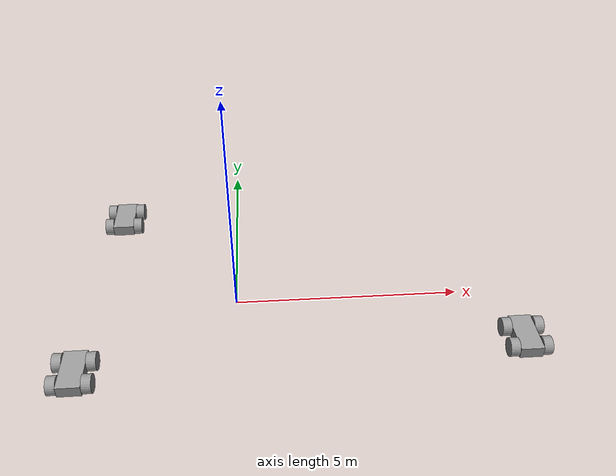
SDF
<?xml version='1.0'?>
<sdf version='1.6'>
  <model name='wheelRobots'>
    <link name='link_0_clone'>
      <pose frame=''>6.18629 -1.44509 -0.029821 0 -0 0</pose>
      <inertial>
        <mass>1</mass>
        <inertia>
          <ixx>0.166667</ixx>
          <ixy>0</ixy>
          <ixz>0</ixz>
          <iyy>0.166667</iyy>
          <iyz>0</iyz>
          <izz>0.166667</izz>
        </inertia>
        <pose frame=''>0 0 1 0 -0 0</pose>
      </inertial>
      <self_collide>0</self_collide>
      <kinematic>0</kinematic>
      <gravity>1</gravity>
      <visual name='visual'>
        <pose frame=''>0 0 0 0 -0 0</pose>
        <geometry>
          <box>
            <size>0.5 1 0.25</size>
          </box>
        </geometry>
        <material>
          <lighting>1</lighting>
          <script>
            <uri>file://media/materials/scripts/gazebo.material</uri>
            <name>Gazebo/Grey</name>
          </script>
          <ambient>0.3 0.3 0.3 1</ambient>
          <diffuse>0.7 0.7 0.7 1</diffuse>
          <specular>0.01 0.01 0.01 1</specular>
          <emissive>0 0 0 1</emissive>
          <shader type='vertex'>
            <normal_map>__default__</normal_map>
          </shader>
        </material>
        <transparency>0</transparency>
        <cast_shadows>1</cast_shadows>
      </visual>
      <collision name='collision'>
        <laser_retro>0</laser_retro>
        <max_contacts>10</max_contacts>
        <pose frame=''>0 0 0 0 -0 0</pose>
        <geometry>
          <box>
            <size>0.5 1 0.25</size>
          </box>
        </geometry>
        <surface>
          <friction>
            <ode>
              <mu>1</mu>
              <mu2>1</mu2>
              <fdir1>0 0 0</fdir1>
              <slip1>0</slip1>
              <slip2>0</slip2>
            </ode>
            <torsional>
              <coefficient>1</coefficient>
              <patch_radius>0</patch_radius>
              <surface_radius>0</surface_radius>
              <use_patch_radius>1</use_patch_radius>
              <ode>
                <slip>0</slip>
              </ode>
            </torsional>
          </friction>
          <bounce>
            <restitution_coefficient>0</restitution_coefficient>
            <threshold>1e+06</threshold>
          </bounce>
          <contact>
            <collide_without_contact>0</collide_without_contact>
            <collide_without_contact_bitmask>1</collide_without_contact_bitmask>
            <collide_bitmask>1</collide_bitmask>
            <ode>
              <soft_cfm>0</soft_cfm>
              <soft_erp>0.2</soft_erp>
              <kp>1e+13</kp>
              <kd>1</kd>
              <max_vel>0.01</max_vel>
              <min_depth>0</min_depth>
            </ode>
            <bullet>
              <split_impulse>1</split_impulse>
              <split_impulse_penetration_threshold>-0.01</split_impulse_penetration_threshold>
              <soft_cfm>0</soft_cfm>
              <soft_erp>0.2</soft_erp>
              <kp>1e+13</kp>
              <kd>1</kd>
            </bullet>
          </contact>
        </surface>
      </collision>
    </link>
    <link name='link_0_clone_clone'>
      <pose frame=''>-3.31114 -1.84359 -0.020863 0 -0 0</pose>
      <inertial>
        <mass>1</mass>
        <inertia>
          <ixx>0.166667</ixx>
          <ixy>0</ixy>
          <ixz>0</ixz>
          <iyy>0.166667</iyy>
          <iyz>0</iyz>
          <izz>0.166667</izz>
        </inertia>
        <pose frame=''>0 0 0 0 -0 0</pose>
      </inertial>
      <self_collide>0</self_collide>
      <kinematic>0</kinematic>
      <visual name='visual'>
        <pose frame=''>0 0 0 0 -0 0</pose>
        <geometry>
          <box>
            <size>0.5 1 0.25</size>
          </box>
        </geometry>
        <material>
          <lighting>1</lighting>
          <script>
            <uri>file://media/materials/scripts/gazebo.material</uri>
            <name>Gazebo/Grey</name>
          </script>
          <ambient>0.3 0.3 0.3 1</ambient>
          <diffuse>0.7 0.7 0.7 1</diffuse>
          <specular>0.01 0.01 0.01 1</specular>
          <emissive>0 0 0 1</emissive>
          <shader type='vertex'>
            <normal_map>__default__</normal_map>
          </shader>
        </material>
        <transparency>0</transparency>
        <cast_shadows>1</cast_shadows>
      </visual>
      <collision name='collision'>
        <laser_retro>0</laser_retro>
        <max_contacts>10</max_contacts>
        <pose frame=''>0 0 0 0 -0 0</pose>
        <geometry>
          <box>
            <size>0.5 1 0.25</size>
          </box>
        </geometry>
        <surface>
          <friction>
            <ode>
              <mu>1</mu>
              <mu2>1</mu2>
              <fdir1>0 0 0</fdir1>
              <slip1>0</slip1>
              <slip2>0</slip2>
            </ode>
            <torsional>
              <coefficient>1</coefficient>
              <patch_radius>0</patch_radius>
              <surface_radius>0</surface_radius>
              <use_patch_radius>1</use_patch_radius>
              <ode>
                <slip>0</slip>
              </ode>
            </torsional>
          </friction>
          <bounce>
            <restitution_coefficient>0</restitution_coefficient>
            <threshold>1e+06</threshold>
          </bounce>
          <contact>
            <collide_without_contact>0</collide_without_contact>
            <collide_without_contact_bitmask>1</collide_without_contact_bitmask>
            <collide_bitmask>1</collide_bitmask>
            <ode>
              <soft_cfm>0</soft_cfm>
              <soft_erp>0.2</soft_erp>
              <kp>1e+13</kp>
              <kd>1</kd>
              <max_vel>0.01</max_vel>
              <min_depth>0</min_depth>
            </ode>
            <bullet>
              <split_impulse>1</split_impulse>
              <split_impulse_penetration_threshold>-0.01</split_impulse_penetration_threshold>
              <soft_cfm>0</soft_cfm>
              <soft_erp>0.2</soft_erp>
              <kp>1e+13</kp>
              <kd>1</kd>
            </bullet>
          </contact>
        </surface>
      </collision>
    </link>
    <link name='link_0_clone_clone_0'>
      <pose frame=''>-2.87515 3.28869 0.050684 0 -0 0</pose>
      <inertial>
        <mass>1</mass>
        <inertia>
          <ixx>0.166667</ixx>
          <ixy>0</ixy>
          <ixz>0</ixz>
          <iyy>0.166667</iyy>
          <iyz>0</iyz>
          <izz>0.166667</izz>
        </inertia>
        <pose frame=''>0 0 0 0 -0 0</pose>
      </inertial>
      <self_collide>0</self_collide>
      <kinematic>0</kinematic>
      <visual name='visual'>
        <pose frame=''>0 0 0 0 -0 0</pose>
        <geometry>
          <box>
            <size>0.5 1 0.25</size>
          </box>
        </geometry>
        <material>
          <lighting>1</lighting>
          <script>
            <uri>file://media/materials/scripts/gazebo.material</uri>
            <name>Gazebo/Grey</name>
          </script>
          <ambient>0.3 0.3 0.3 1</ambient>
          <diffuse>0.7 0.7 0.7 1</diffuse>
          <specular>0.01 0.01 0.01 1</specular>
          <emissive>0 0 0 1</emissive>
          <shader type='vertex'>
            <normal_map>__default__</normal_map>
          </shader>
        </material>
        <transparency>0</transparency>
        <cast_shadows>1</cast_shadows>
      </visual>
      <collision name='collision'>
        <laser_retro>0</laser_retro>
        <max_contacts>10</max_contacts>
        <pose frame=''>0 0 0 0 -0 0</pose>
        <geometry>
          <box>
            <size>0.5 1 0.25</size>
          </box>
        </geometry>
        <surface>
          <friction>
            <ode>
              <mu>1</mu>
              <mu2>1</mu2>
              <fdir1>0 0 0</fdir1>
              <slip1>0</slip1>
              <slip2>0</slip2>
            </ode>
            <torsional>
              <coefficient>1</coefficient>
              <patch_radius>0</patch_radius>
              <surface_radius>0</surface_radius>
              <use_patch_radius>1</use_patch_radius>
              <ode>
                <slip>0</slip>
              </ode>
            </torsional>
          </friction>
          <bounce>
            <restitution_coefficient>0</restitution_coefficient>
            <threshold>1e+06</threshold>
          </bounce>
          <contact>
            <collide_without_contact>0</collide_without_contact>
            <collide_without_contact_bitmask>1</collide_without_contact_bitmask>
            <collide_bitmask>1</collide_bitmask>
            <ode>
              <soft_cfm>0</soft_cfm>
              <soft_erp>0.2</soft_erp>
              <kp>1e+13</kp>
              <kd>1</kd>
              <max_vel>0.01</max_vel>
              <min_depth>0</min_depth>
            </ode>
            <bullet>
              <split_impulse>1</split_impulse>
              <split_impulse_penetration_threshold>-0.01</split_impulse_penetration_threshold>
              <soft_cfm>0</soft_cfm>
              <soft_erp>0.2</soft_erp>
              <kp>1e+13</kp>
              <kd>1</kd>
            </bullet>
          </contact>
        </surface>
      </collision>
    </link>
    <link name='link_1_clone_clone_1'>
      <pose frame=''>6.53631 -1.14509 -0.029822 0 1.5707 0</pose>
      <inertial>
        <mass>1</mass>
        <inertia>
          <ixx>0.145833</ixx>
          <ixy>0</ixy>
          <ixz>0</ixz>
          <iyy>0.145833</iyy>
          <iyz>0</iyz>
          <izz>0.125</izz>
        </inertia>
        <pose frame=''>0 0 0 0 -0 0</pose>
      </inertial>
      <self_collide>0</self_collide>
      <kinematic>0</kinematic>
      <gravity>1</gravity>
      <visual name='visual'>
        <pose frame=''>0 0 0 0 -0 0</pose>
        <geometry>
          <cylinder>
            <radius>0.2</radius>
            <length>0.2</length>
          </cylinder>
        </geometry>
        <material>
          <lighting>1</lighting>
          <script>
            <uri>file://media/materials/scripts/gazebo.material</uri>
            <name>Gazebo/Grey</name>
          </script>
          <ambient>0.3 0.3 0.3 1</ambient>
          <diffuse>0.7 0.7 0.7 1</diffuse>
          <specular>0.01 0.01 0.01 1</specular>
          <emissive>0 0 0 1</emissive>
          <shader type='vertex'>
            <normal_map>__default__</normal_map>
          </shader>
        </material>
        <transparency>0</transparency>
        <cast_shadows>1</cast_shadows>
      </visual>
      <collision name='collision'>
        <laser_retro>0</laser_retro>
        <max_contacts>10</max_contacts>
        <pose frame=''>0 0 0 0 -0 0</pose>
        <geometry>
          <cylinder>
            <radius>0.2</radius>
            <length>0.2</length>
          </cylinder>
        </geometry>
        <surface>
          <friction>
            <ode>
              <mu>1</mu>
              <mu2>1</mu2>
              <fdir1>0 0 0</fdir1>
              <slip1>0</slip1>
              <slip2>0</slip2>
            </ode>
            <torsional>
              <coefficient>1</coefficient>
              <patch_radius>0</patch_radius>
              <surface_radius>0</surface_radius>
              <use_patch_radius>1</use_patch_radius>
              <ode>
                <slip>0</slip>
              </ode>
            </torsional>
          </friction>
          <bounce>
            <restitution_coefficient>0</restitution_coefficient>
            <threshold>1e+06</threshold>
          </bounce>
          <contact>
            <collide_without_contact>0</collide_without_contact>
            <collide_without_contact_bitmask>1</collide_without_contact_bitmask>
            <collide_bitmask>1</collide_bitmask>
            <ode>
              <soft_cfm>0</soft_cfm>
              <soft_erp>0.2</soft_erp>
              <kp>1e+13</kp>
              <kd>1</kd>
              <max_vel>0.01</max_vel>
              <min_depth>0</min_depth>
            </ode>
            <bullet>
              <split_impulse>1</split_impulse>
              <split_impulse_penetration_threshold>-0.01</split_impulse_penetration_threshold>
              <soft_cfm>0</soft_cfm>
              <soft_erp>0.2</soft_erp>
              <kp>1e+13</kp>
              <kd>1</kd>
            </bullet>
          </contact>
        </surface>
      </collision>
    </link>
    <link name='link_1_clone_clone_2'>
      <pose frame=''>5.83627 -1.74509 -0.029821 0 1.5707 0</pose>
      <inertial>
        <mass>1</mass>
        <inertia>
          <ixx>0.145833</ixx>
          <ixy>0</ixy>
          <ixz>0</ixz>
          <iyy>0.145833</iyy>
          <iyz>0</iyz>
          <izz>0.125</izz>
        </inertia>
        <pose frame=''>0 0 0 0 -0 0</pose>
      </inertial>
      <self_collide>0</self_collide>
      <kinematic>0</kinematic>
      <gravity>1</gravity>
      <visual name='visual'>
        <pose frame=''>0 0 0 0 -0 0</pose>
        <geometry>
          <cylinder>
            <radius>0.2</radius>
            <length>0.2</length>
          </cylinder>
        </geometry>
        <material>
          <lighting>1</lighting>
          <script>
            <uri>file://media/materials/scripts/gazebo.material</uri>
            <name>Gazebo/Grey</name>
          </script>
          <ambient>0.3 0.3 0.3 1</ambient>
          <diffuse>0.7 0.7 0.7 1</diffuse>
          <specular>0.01 0.01 0.01 1</specular>
          <emissive>0 0 0 1</emissive>
          <shader type='vertex'>
            <normal_map>__default__</normal_map>
          </shader>
        </material>
        <transparency>0</transparency>
        <cast_shadows>1</cast_shadows>
      </visual>
      <collision name='collision'>
        <laser_retro>0</laser_retro>
        <max_contacts>10</max_contacts>
        <pose frame=''>0 0 0 0 -0 0</pose>
        <geometry>
          <cylinder>
            <radius>0.2</radius>
            <length>0.2</length>
          </cylinder>
        </geometry>
        <surface>
          <friction>
            <ode>
              <mu>1</mu>
              <mu2>1</mu2>
              <fdir1>0 0 0</fdir1>
              <slip1>0</slip1>
              <slip2>0</slip2>
            </ode>
            <torsional>
              <coefficient>1</coefficient>
              <patch_radius>0</patch_radius>
              <surface_radius>0</surface_radius>
              <use_patch_radius>1</use_patch_radius>
              <ode>
                <slip>0</slip>
              </ode>
            </torsional>
          </friction>
          <bounce>
            <restitution_coefficient>0</restitution_coefficient>
            <threshold>1e+06</threshold>
          </bounce>
          <contact>
            <collide_without_contact>0</collide_without_contact>
            <collide_without_contact_bitmask>1</collide_without_contact_bitmask>
            <collide_bitmask>1</collide_bitmask>
            <ode>
              <soft_cfm>0</soft_cfm>
              <soft_erp>0.2</soft_erp>
              <kp>1e+13</kp>
              <kd>1</kd>
              <max_vel>0.01</max_vel>
              <min_depth>0</min_depth>
            </ode>
            <bullet>
              <split_impulse>1</split_impulse>
              <split_impulse_penetration_threshold>-0.01</split_impulse_penetration_threshold>
              <soft_cfm>0</soft_cfm>
              <soft_erp>0.2</soft_erp>
              <kp>1e+13</kp>
              <kd>1</kd>
            </bullet>
          </contact>
        </surface>
      </collision>
    </link>
    <link name='link_1_clone_clone_3'>
      <pose frame=''>5.83627 -1.14509 -0.029821 0 1.5707 0</pose>
      <inertial>
        <mass>1</mass>
        <inertia>
          <ixx>0.145833</ixx>
          <ixy>0</ixy>
          <ixz>0</ixz>
          <iyy>0.145833</iyy>
          <iyz>0</iyz>
          <izz>0.125</izz>
        </inertia>
        <pose frame=''>0 0 0 0 -0 0</pose>
      </inertial>
      <self_collide>0</self_collide>
      <kinematic>0</kinematic>
      <visual name='visual'>
        <pose frame=''>0 0 0 0 -0 0</pose>
        <geometry>
          <cylinder>
            <radius>0.2</radius>
            <length>0.2</length>
          </cylinder>
        </geometry>
        <material>
          <lighting>1</lighting>
          <script>
            <uri>file://media/materials/scripts/gazebo.material</uri>
            <name>Gazebo/Grey</name>
          </script>
          <ambient>0.3 0.3 0.3 1</ambient>
          <diffuse>0.7 0.7 0.7 1</diffuse>
          <specular>0.01 0.01 0.01 1</specular>
          <emissive>0 0 0 1</emissive>
          <shader type='vertex'>
            <normal_map>__default__</normal_map>
          </shader>
        </material>
        <transparency>0</transparency>
        <cast_shadows>1</cast_shadows>
      </visual>
      <collision name='collision'>
        <laser_retro>0</laser_retro>
        <max_contacts>10</max_contacts>
        <pose frame=''>0 0 0 0 -0 0</pose>
        <geometry>
          <cylinder>
            <radius>0.2</radius>
            <length>0.2</length>
          </cylinder>
        </geometry>
        <surface>
          <friction>
            <ode>
              <mu>1</mu>
              <mu2>1</mu2>
              <fdir1>0 0 0</fdir1>
              <slip1>0</slip1>
              <slip2>0</slip2>
            </ode>
            <torsional>
              <coefficient>1</coefficient>
              <patch_radius>0</patch_radius>
              <surface_radius>0</surface_radius>
              <use_patch_radius>1</use_patch_radius>
              <ode>
                <slip>0</slip>
              </ode>
            </torsional>
          </friction>
          <bounce>
            <restitution_coefficient>0</restitution_coefficient>
            <threshold>1e+06</threshold>
          </bounce>
          <contact>
            <collide_without_contact>0</collide_without_contact>
            <collide_without_contact_bitmask>1</collide_without_contact_bitmask>
            <collide_bitmask>1</collide_bitmask>
            <ode>
              <soft_cfm>0</soft_cfm>
              <soft_erp>0.2</soft_erp>
              <kp>1e+13</kp>
              <kd>1</kd>
              <max_vel>0.01</max_vel>
              <min_depth>0</min_depth>
            </ode>
            <bullet>
              <split_impulse>1</split_impulse>
              <split_impulse_penetration_threshold>-0.01</split_impulse_penetration_threshold>
              <soft_cfm>0</soft_cfm>
              <soft_erp>0.2</soft_erp>
              <kp>1e+13</kp>
              <kd>1</kd>
            </bullet>
          </contact>
        </surface>
      </collision>
    </link>
    <link name='link_1_clone_clone_4'>
      <pose frame=''>6.53631 -1.74509 -0.029821 0 1.5707 0</pose>
      <inertial>
        <mass>1</mass>
        <inertia>
          <ixx>0.145833</ixx>
          <ixy>0</ixy>
          <ixz>0</ixz>
          <iyy>0.145833</iyy>
          <iyz>0</iyz>
          <izz>0.125</izz>
        </inertia>
        <pose frame=''>0 0 0 0 -0 0</pose>
      </inertial>
      <self_collide>0</self_collide>
      <kinematic>0</kinematic>
      <visual name='visual'>
        <pose frame=''>0 0 0 0 -0 0</pose>
        <geometry>
          <cylinder>
            <radius>0.2</radius>
            <length>0.2</length>
          </cylinder>
        </geometry>
        <material>
          <lighting>1</lighting>
          <script>
            <uri>file://media/materials/scripts/gazebo.material</uri>
            <name>Gazebo/Grey</name>
          </script>
          <ambient>0.3 0.3 0.3 1</ambient>
          <diffuse>0.7 0.7 0.7 1</diffuse>
          <specular>0.01 0.01 0.01 1</specular>
          <emissive>0 0 0 1</emissive>
          <shader type='vertex'>
            <normal_map>__default__</normal_map>
          </shader>
        </material>
        <transparency>0</transparency>
        <cast_shadows>1</cast_shadows>
      </visual>
      <collision name='collision'>
        <laser_retro>0</laser_retro>
        <max_contacts>10</max_contacts>
        <pose frame=''>0 0 0 0 -0 0</pose>
        <geometry>
          <cylinder>
            <radius>0.2</radius>
            <length>0.2</length>
          </cylinder>
        </geometry>
        <surface>
          <friction>
            <ode>
              <mu>1</mu>
              <mu2>1</mu2>
              <fdir1>0 0 0</fdir1>
              <slip1>0</slip1>
              <slip2>0</slip2>
            </ode>
            <torsional>
              <coefficient>1</coefficient>
              <patch_radius>0</patch_radius>
              <surface_radius>0</surface_radius>
              <use_patch_radius>1</use_patch_radius>
              <ode>
                <slip>0</slip>
              </ode>
            </torsional>
          </friction>
          <bounce>
            <restitution_coefficient>0</restitution_coefficient>
            <threshold>1e+06</threshold>
          </bounce>
          <contact>
            <collide_without_contact>0</collide_without_contact>
            <collide_without_contact_bitmask>1</collide_without_contact_bitmask>
            <collide_bitmask>1</collide_bitmask>
            <ode>
              <soft_cfm>0</soft_cfm>
              <soft_erp>0.2</soft_erp>
              <kp>1e+13</kp>
              <kd>1</kd>
              <max_vel>0.01</max_vel>
              <min_depth>0</min_depth>
            </ode>
            <bullet>
              <split_impulse>1</split_impulse>
              <split_impulse_penetration_threshold>-0.01</split_impulse_penetration_threshold>
              <soft_cfm>0</soft_cfm>
              <soft_erp>0.2</soft_erp>
              <kp>1e+13</kp>
              <kd>1</kd>
            </bullet>
          </contact>
        </surface>
      </collision>
    </link>
    <link name='link_1_clone_clone_4_clone'>
      <pose frame=''>-3.66116 -1.54359 -0.020863 0 1.5707 0</pose>
      <inertial>
        <mass>1</mass>
        <inertia>
          <ixx>0.145833</ixx>
          <ixy>0</ixy>
          <ixz>0</ixz>
          <iyy>0.145833</iyy>
          <iyz>0</iyz>
          <izz>0.125</izz>
        </inertia>
        <pose frame=''>0 0 0 0 -0 0</pose>
      </inertial>
      <self_collide>0</self_collide>
      <kinematic>0</kinematic>
      <visual name='visual'>
        <pose frame=''>0 0 0 0 -0 0</pose>
        <geometry>
          <cylinder>
            <radius>0.2</radius>
            <length>0.2</length>
          </cylinder>
        </geometry>
        <material>
          <lighting>1</lighting>
          <script>
            <uri>file://media/materials/scripts/gazebo.material</uri>
            <name>Gazebo/Grey</name>
          </script>
          <ambient>0.3 0.3 0.3 1</ambient>
          <diffuse>0.7 0.7 0.7 1</diffuse>
          <specular>0.01 0.01 0.01 1</specular>
          <emissive>0 0 0 1</emissive>
          <shader type='vertex'>
            <normal_map>__default__</normal_map>
          </shader>
        </material>
        <transparency>0</transparency>
        <cast_shadows>1</cast_shadows>
      </visual>
      <collision name='collision'>
        <laser_retro>0</laser_retro>
        <max_contacts>10</max_contacts>
        <pose frame=''>0 0 0 0 -0 0</pose>
        <geometry>
          <cylinder>
            <radius>0.2</radius>
            <length>0.2</length>
          </cylinder>
        </geometry>
        <surface>
          <friction>
            <ode>
              <mu>1</mu>
              <mu2>1</mu2>
              <fdir1>0 0 0</fdir1>
              <slip1>0</slip1>
              <slip2>0</slip2>
            </ode>
            <torsional>
              <coefficient>1</coefficient>
              <patch_radius>0</patch_radius>
              <surface_radius>0</surface_radius>
              <use_patch_radius>1</use_patch_radius>
              <ode>
                <slip>0</slip>
              </ode>
            </torsional>
          </friction>
          <bounce>
            <restitution_coefficient>0</restitution_coefficient>
            <threshold>1e+06</threshold>
          </bounce>
          <contact>
            <collide_without_contact>0</collide_without_contact>
            <collide_without_contact_bitmask>1</collide_without_contact_bitmask>
            <collide_bitmask>1</collide_bitmask>
            <ode>
              <soft_cfm>0</soft_cfm>
              <soft_erp>0.2</soft_erp>
              <kp>1e+13</kp>
              <kd>1</kd>
              <max_vel>0.01</max_vel>
              <min_depth>0</min_depth>
            </ode>
            <bullet>
              <split_impulse>1</split_impulse>
              <split_impulse_penetration_threshold>-0.01</split_impulse_penetration_threshold>
              <soft_cfm>0</soft_cfm>
              <soft_erp>0.2</soft_erp>
              <kp>1e+13</kp>
              <kd>1</kd>
            </bullet>
          </contact>
        </surface>
      </collision>
    </link>
    <link name='link_1_clone_clone_4_clone_0'>
      <pose frame=''>-3.66116 -2.14359 -0.020863 0 1.5707 0</pose>
      <inertial>
        <mass>1</mass>
        <inertia>
          <ixx>0.145833</ixx>
          <ixy>0</ixy>
          <ixz>0</ixz>
          <iyy>0.145833</iyy>
          <iyz>0</iyz>
          <izz>0.125</izz>
        </inertia>
        <pose frame=''>0 0 0 0 -0 0</pose>
      </inertial>
      <self_collide>0</self_collide>
      <kinematic>0</kinematic>
      <visual name='visual'>
        <pose frame=''>0 0 0 0 -0 0</pose>
        <geometry>
          <cylinder>
            <radius>0.2</radius>
            <length>0.2</length>
          </cylinder>
        </geometry>
        <material>
          <lighting>1</lighting>
          <script>
            <uri>file://media/materials/scripts/gazebo.material</uri>
            <name>Gazebo/Grey</name>
          </script>
          <ambient>0.3 0.3 0.3 1</ambient>
          <diffuse>0.7 0.7 0.7 1</diffuse>
          <specular>0.01 0.01 0.01 1</specular>
          <emissive>0 0 0 1</emissive>
          <shader type='vertex'>
            <normal_map>__default__</normal_map>
          </shader>
        </material>
        <transparency>0</transparency>
        <cast_shadows>1</cast_shadows>
      </visual>
      <collision name='collision'>
        <laser_retro>0</laser_retro>
        <max_contacts>10</max_contacts>
        <pose frame=''>0 0 0 0 -0 0</pose>
        <geometry>
          <cylinder>
            <radius>0.2</radius>
            <length>0.2</length>
          </cylinder>
        </geometry>
        <surface>
          <friction>
            <ode>
              <mu>1</mu>
              <mu2>1</mu2>
              <fdir1>0 0 0</fdir1>
              <slip1>0</slip1>
              <slip2>0</slip2>
            </ode>
            <torsional>
              <coefficient>1</coefficient>
              <patch_radius>0</patch_radius>
              <surface_radius>0</surface_radius>
              <use_patch_radius>1</use_patch_radius>
              <ode>
                <slip>0</slip>
              </ode>
            </torsional>
          </friction>
          <bounce>
            <restitution_coefficient>0</restitution_coefficient>
            <threshold>1e+06</threshold>
          </bounce>
          <contact>
            <collide_without_contact>0</collide_without_contact>
            <collide_without_contact_bitmask>1</collide_without_contact_bitmask>
            <collide_bitmask>1</collide_bitmask>
            <ode>
              <soft_cfm>0</soft_cfm>
              <soft_erp>0.2</soft_erp>
              <kp>1e+13</kp>
              <kd>1</kd>
              <max_vel>0.01</max_vel>
              <min_depth>0</min_depth>
            </ode>
            <bullet>
              <split_impulse>1</split_impulse>
              <split_impulse_penetration_threshold>-0.01</split_impulse_penetration_threshold>
              <soft_cfm>0</soft_cfm>
              <soft_erp>0.2</soft_erp>
              <kp>1e+13</kp>
              <kd>1</kd>
            </bullet>
          </contact>
        </surface>
      </collision>
    </link>
    <link name='link_1_clone_clone_4_clone_0_clone'>
      <pose frame=''>-3.22517 2.98868 0.050684 0 1.5707 0</pose>
      <inertial>
        <mass>1</mass>
        <inertia>
          <ixx>0.145833</ixx>
          <ixy>0</ixy>
          <ixz>0</ixz>
          <iyy>0.145833</iyy>
          <iyz>0</iyz>
          <izz>0.125</izz>
        </inertia>
        <pose frame=''>0 0 0 0 -0 0</pose>
      </inertial>
      <self_collide>0</self_collide>
      <kinematic>0</kinematic>
      <visual name='visual'>
        <pose frame=''>0 0 0 0 -0 0</pose>
        <geometry>
          <cylinder>
            <radius>0.2</radius>
            <length>0.2</length>
          </cylinder>
        </geometry>
        <material>
          <lighting>1</lighting>
          <script>
            <uri>file://media/materials/scripts/gazebo.material</uri>
            <name>Gazebo/Grey</name>
          </script>
          <ambient>0.3 0.3 0.3 1</ambient>
          <diffuse>0.7 0.7 0.7 1</diffuse>
          <specular>0.01 0.01 0.01 1</specular>
          <emissive>0 0 0 1</emissive>
          <shader type='vertex'>
            <normal_map>__default__</normal_map>
          </shader>
        </material>
        <transparency>0</transparency>
        <cast_shadows>1</cast_shadows>
      </visual>
      <collision name='collision'>
        <laser_retro>0</laser_retro>
        <max_contacts>10</max_contacts>
        <pose frame=''>0 0 0 0 -0 0</pose>
        <geometry>
          <cylinder>
            <radius>0.2</radius>
            <length>0.2</length>
          </cylinder>
        </geometry>
        <surface>
          <friction>
            <ode>
              <mu>1</mu>
              <mu2>1</mu2>
              <fdir1>0 0 0</fdir1>
              <slip1>0</slip1>
              <slip2>0</slip2>
            </ode>
            <torsional>
              <coefficient>1</coefficient>
              <patch_radius>0</patch_radius>
              <surface_radius>0</surface_radius>
              <use_patch_radius>1</use_patch_radius>
              <ode>
                <slip>0</slip>
              </ode>
            </torsional>
          </friction>
          <bounce>
            <restitution_coefficient>0</restitution_coefficient>
            <threshold>1e+06</threshold>
          </bounce>
          <contact>
            <collide_without_contact>0</collide_without_contact>
            <collide_without_contact_bitmask>1</collide_without_contact_bitmask>
            <collide_bitmask>1</collide_bitmask>
            <ode>
              <soft_cfm>0</soft_cfm>
              <soft_erp>0.2</soft_erp>
              <kp>1e+13</kp>
              <kd>1</kd>
              <max_vel>0.01</max_vel>
              <min_depth>0</min_depth>
            </ode>
            <bullet>
              <split_impulse>1</split_impulse>
              <split_impulse_penetration_threshold>-0.01</split_impulse_penetration_threshold>
              <soft_cfm>0</soft_cfm>
              <soft_erp>0.2</soft_erp>
              <kp>1e+13</kp>
              <kd>1</kd>
            </bullet>
          </contact>
        </surface>
      </collision>
    </link>
    <link name='link_1_clone_clone_4_clone_0_clone_0'>
      <pose frame=''>-3.22517 3.58868 0.050684 0 1.5707 0</pose>
      <inertial>
        <mass>1</mass>
        <inertia>
          <ixx>0.145833</ixx>
          <ixy>0</ixy>
          <ixz>0</ixz>
          <iyy>0.145833</iyy>
          <iyz>0</iyz>
          <izz>0.125</izz>
        </inertia>
        <pose frame=''>0 0 0 0 -0 0</pose>
      </inertial>
      <self_collide>0</self_collide>
      <kinematic>0</kinematic>
      <visual name='visual'>
        <pose frame=''>0 0 0 0 -0 0</pose>
        <geometry>
          <cylinder>
            <radius>0.2</radius>
            <length>0.2</length>
          </cylinder>
        </geometry>
        <material>
          <lighting>1</lighting>
          <script>
            <uri>file://media/materials/scripts/gazebo.material</uri>
            <name>Gazebo/Grey</name>
          </script>
          <ambient>0.3 0.3 0.3 1</ambient>
          <diffuse>0.7 0.7 0.7 1</diffuse>
          <specular>0.01 0.01 0.01 1</specular>
          <emissive>0 0 0 1</emissive>
          <shader type='vertex'>
            <normal_map>__default__</normal_map>
          </shader>
        </material>
        <transparency>0</transparency>
        <cast_shadows>1</cast_shadows>
      </visual>
      <collision name='collision'>
        <laser_retro>0</laser_retro>
        <max_contacts>10</max_contacts>
        <pose frame=''>0 0 0 0 -0 0</pose>
        <geometry>
          <cylinder>
            <radius>0.2</radius>
            <length>0.2</length>
          </cylinder>
        </geometry>
        <surface>
          <friction>
            <ode>
              <mu>1</mu>
              <mu2>1</mu2>
              <fdir1>0 0 0</fdir1>
              <slip1>0</slip1>
              <slip2>0</slip2>
            </ode>
            <torsional>
              <coefficient>1</coefficient>
              <patch_radius>0</patch_radius>
              <surface_radius>0</surface_radius>
              <use_patch_radius>1</use_patch_radius>
              <ode>
                <slip>0</slip>
              </ode>
            </torsional>
          </friction>
          <bounce>
            <restitution_coefficient>0</restitution_coefficient>
            <threshold>1e+06</threshold>
          </bounce>
          <contact>
            <collide_without_contact>0</collide_without_contact>
            <collide_without_contact_bitmask>1</collide_without_contact_bitmask>
            <collide_bitmask>1</collide_bitmask>
            <ode>
              <soft_cfm>0</soft_cfm>
              <soft_erp>0.2</soft_erp>
              <kp>1e+13</kp>
              <kd>1</kd>
              <max_vel>0.01</max_vel>
              <min_depth>0</min_depth>
            </ode>
            <bullet>
              <split_impulse>1</split_impulse>
              <split_impulse_penetration_threshold>-0.01</split_impulse_penetration_threshold>
              <soft_cfm>0</soft_cfm>
              <soft_erp>0.2</soft_erp>
              <kp>1e+13</kp>
              <kd>1</kd>
            </bullet>
          </contact>
        </surface>
      </collision>
    </link>
    <link name='link_1_clone_clone_4_clone_0_clone_1'>
      <pose frame=''>-2.52513 3.58868 0.050684 0 1.5707 0</pose>
      <inertial>
        <mass>1</mass>
        <inertia>
          <ixx>0.145833</ixx>
          <ixy>0</ixy>
          <ixz>0</ixz>
          <iyy>0.145833</iyy>
          <iyz>0</iyz>
          <izz>0.125</izz>
        </inertia>
        <pose frame=''>0 0 0 0 -0 0</pose>
      </inertial>
      <self_collide>0</self_collide>
      <kinematic>0</kinematic>
      <visual name='visual'>
        <pose frame=''>0 0 0 0 -0 0</pose>
        <geometry>
          <cylinder>
            <radius>0.2</radius>
            <length>0.2</length>
          </cylinder>
        </geometry>
        <material>
          <lighting>1</lighting>
          <script>
            <uri>file://media/materials/scripts/gazebo.material</uri>
            <name>Gazebo/Grey</name>
          </script>
          <ambient>0.3 0.3 0.3 1</ambient>
          <diffuse>0.7 0.7 0.7 1</diffuse>
          <specular>0.01 0.01 0.01 1</specular>
          <emissive>0 0 0 1</emissive>
          <shader type='vertex'>
            <normal_map>__default__</normal_map>
          </shader>
        </material>
        <transparency>0</transparency>
        <cast_shadows>1</cast_shadows>
      </visual>
      <collision name='collision'>
        <laser_retro>0</laser_retro>
        <max_contacts>10</max_contacts>
        <pose frame=''>0 0 0 0 -0 0</pose>
        <geometry>
          <cylinder>
            <radius>0.2</radius>
            <length>0.2</length>
          </cylinder>
        </geometry>
        <surface>
          <friction>
            <ode>
              <mu>1</mu>
              <mu2>1</mu2>
              <fdir1>0 0 0</fdir1>
              <slip1>0</slip1>
              <slip2>0</slip2>
            </ode>
            <torsional>
              <coefficient>1</coefficient>
              <patch_radius>0</patch_radius>
              <surface_radius>0</surface_radius>
              <use_patch_radius>1</use_patch_radius>
              <ode>
                <slip>0</slip>
              </ode>
            </torsional>
          </friction>
          <bounce>
            <restitution_coefficient>0</restitution_coefficient>
            <threshold>1e+06</threshold>
          </bounce>
          <contact>
            <collide_without_contact>0</collide_without_contact>
            <collide_without_contact_bitmask>1</collide_without_contact_bitmask>
            <collide_bitmask>1</collide_bitmask>
            <ode>
              <soft_cfm>0</soft_cfm>
              <soft_erp>0.2</soft_erp>
              <kp>1e+13</kp>
              <kd>1</kd>
              <max_vel>0.01</max_vel>
              <min_depth>0</min_depth>
            </ode>
            <bullet>
              <split_impulse>1</split_impulse>
              <split_impulse_penetration_threshold>-0.01</split_impulse_penetration_threshold>
              <soft_cfm>0</soft_cfm>
              <soft_erp>0.2</soft_erp>
              <kp>1e+13</kp>
              <kd>1</kd>
            </bullet>
          </contact>
        </surface>
      </collision>
    </link>
    <link name='link_1_clone_clone_4_clone_0_clone_2'>
      <pose frame=''>-2.52513 2.98868 0.050684 0 1.5707 0</pose>
      <inertial>
        <mass>1</mass>
        <inertia>
          <ixx>0.145833</ixx>
          <ixy>0</ixy>
          <ixz>0</ixz>
          <iyy>0.145833</iyy>
          <iyz>0</iyz>
          <izz>0.125</izz>
        </inertia>
        <pose frame=''>0 0 0 0 -0 0</pose>
      </inertial>
      <self_collide>0</self_collide>
      <kinematic>0</kinematic>
      <visual name='visual'>
        <pose frame=''>0 0 0 0 -0 0</pose>
        <geometry>
          <cylinder>
            <radius>0.2</radius>
            <length>0.2</length>
          </cylinder>
        </geometry>
        <material>
          <lighting>1</lighting>
          <script>
            <uri>file://media/materials/scripts/gazebo.material</uri>
            <name>Gazebo/Grey</name>
          </script>
          <ambient>0.3 0.3 0.3 1</ambient>
          <diffuse>0.7 0.7 0.7 1</diffuse>
          <specular>0.01 0.01 0.01 1</specular>
          <emissive>0 0 0 1</emissive>
          <shader type='vertex'>
            <normal_map>__default__</normal_map>
          </shader>
        </material>
        <transparency>0</transparency>
        <cast_shadows>1</cast_shadows>
      </visual>
      <collision name='collision'>
        <laser_retro>0</laser_retro>
        <max_contacts>10</max_contacts>
        <pose frame=''>0 0 0 0 -0 0</pose>
        <geometry>
          <cylinder>
            <radius>0.2</radius>
            <length>0.2</length>
          </cylinder>
        </geometry>
        <surface>
          <friction>
            <ode>
              <mu>1</mu>
              <mu2>1</mu2>
              <fdir1>0 0 0</fdir1>
              <slip1>0</slip1>
              <slip2>0</slip2>
            </ode>
            <torsional>
              <coefficient>1</coefficient>
              <patch_radius>0</patch_radius>
              <surface_radius>0</surface_radius>
              <use_patch_radius>1</use_patch_radius>
              <ode>
                <slip>0</slip>
              </ode>
            </torsional>
          </friction>
          <bounce>
            <restitution_coefficient>0</restitution_coefficient>
            <threshold>1e+06</threshold>
          </bounce>
          <contact>
            <collide_without_contact>0</collide_without_contact>
            <collide_without_contact_bitmask>1</collide_without_contact_bitmask>
            <collide_bitmask>1</collide_bitmask>
            <ode>
              <soft_cfm>0</soft_cfm>
              <soft_erp>0.2</soft_erp>
              <kp>1e+13</kp>
              <kd>1</kd>
              <max_vel>0.01</max_vel>
              <min_depth>0</min_depth>
            </ode>
            <bullet>
              <split_impulse>1</split_impulse>
              <split_impulse_penetration_threshold>-0.01</split_impulse_penetration_threshold>
              <soft_cfm>0</soft_cfm>
              <soft_erp>0.2</soft_erp>
              <kp>1e+13</kp>
              <kd>1</kd>
            </bullet>
          </contact>
        </surface>
      </collision>
    </link>
    <link name='link_1_clone_clone_4_clone_1'>
      <pose frame=''>-2.96112 -2.14359 -0.020863 0 1.5707 0</pose>
      <inertial>
        <mass>1</mass>
        <inertia>
          <ixx>0.145833</ixx>
          <ixy>0</ixy>
          <ixz>0</ixz>
          <iyy>0.145833</iyy>
          <iyz>0</iyz>
          <izz>0.125</izz>
        </inertia>
        <pose frame=''>0 0 0 0 -0 0</pose>
      </inertial>
      <self_collide>0</self_collide>
      <kinematic>0</kinematic>
      <visual name='visual'>
        <pose frame=''>0 0 0 0 -0 0</pose>
        <geometry>
          <cylinder>
            <radius>0.2</radius>
            <length>0.2</length>
          </cylinder>
        </geometry>
        <material>
          <lighting>1</lighting>
          <script>
            <uri>file://media/materials/scripts/gazebo.material</uri>
            <name>Gazebo/Grey</name>
          </script>
          <ambient>0.3 0.3 0.3 1</ambient>
          <diffuse>0.7 0.7 0.7 1</diffuse>
          <specular>0.01 0.01 0.01 1</specular>
          <emissive>0 0 0 1</emissive>
          <shader type='vertex'>
            <normal_map>__default__</normal_map>
          </shader>
        </material>
        <transparency>0</transparency>
        <cast_shadows>1</cast_shadows>
      </visual>
      <collision name='collision'>
        <laser_retro>0</laser_retro>
        <max_contacts>10</max_contacts>
        <pose frame=''>0 0 0 0 -0 0</pose>
        <geometry>
          <cylinder>
            <radius>0.2</radius>
            <length>0.2</length>
          </cylinder>
        </geometry>
        <surface>
          <friction>
            <ode>
              <mu>1</mu>
              <mu2>1</mu2>
              <fdir1>0 0 0</fdir1>
              <slip1>0</slip1>
              <slip2>0</slip2>
            </ode>
            <torsional>
              <coefficient>1</coefficient>
              <patch_radius>0</patch_radius>
              <surface_radius>0</surface_radius>
              <use_patch_radius>1</use_patch_radius>
              <ode>
                <slip>0</slip>
              </ode>
            </torsional>
          </friction>
          <bounce>
            <restitution_coefficient>0</restitution_coefficient>
            <threshold>1e+06</threshold>
          </bounce>
          <contact>
            <collide_without_contact>0</collide_without_contact>
            <collide_without_contact_bitmask>1</collide_without_contact_bitmask>
            <collide_bitmask>1</collide_bitmask>
            <ode>
              <soft_cfm>0</soft_cfm>
              <soft_erp>0.2</soft_erp>
              <kp>1e+13</kp>
              <kd>1</kd>
              <max_vel>0.01</max_vel>
              <min_depth>0</min_depth>
            </ode>
            <bullet>
              <split_impulse>1</split_impulse>
              <split_impulse_penetration_threshold>-0.01</split_impulse_penetration_threshold>
              <soft_cfm>0</soft_cfm>
              <soft_erp>0.2</soft_erp>
              <kp>1e+13</kp>
              <kd>1</kd>
            </bullet>
          </contact>
        </surface>
      </collision>
    </link>
    <link name='link_1_clone_clone_4_clone_2'>
      <pose frame=''>-2.96112 -1.54359 -0.020863 0 1.5707 0</pose>
      <inertial>
        <mass>1</mass>
        <inertia>
          <ixx>0.145833</ixx>
          <ixy>0</ixy>
          <ixz>0</ixz>
          <iyy>0.145833</iyy>
          <iyz>0</iyz>
          <izz>0.125</izz>
        </inertia>
        <pose frame=''>0 0 0 0 -0 0</pose>
      </inertial>
      <self_collide>0</self_collide>
      <kinematic>0</kinematic>
      <visual name='visual'>
        <pose frame=''>0 0 0 0 -0 0</pose>
        <geometry>
          <cylinder>
            <radius>0.2</radius>
            <length>0.2</length>
          </cylinder>
        </geometry>
        <material>
          <lighting>1</lighting>
          <script>
            <uri>file://media/materials/scripts/gazebo.material</uri>
            <name>Gazebo/Grey</name>
          </script>
          <ambient>0.3 0.3 0.3 1</ambient>
          <diffuse>0.7 0.7 0.7 1</diffuse>
          <specular>0.01 0.01 0.01 1</specular>
          <emissive>0 0 0 1</emissive>
          <shader type='vertex'>
            <normal_map>__default__</normal_map>
          </shader>
        </material>
        <transparency>0</transparency>
        <cast_shadows>1</cast_shadows>
      </visual>
      <collision name='collision'>
        <laser_retro>0</laser_retro>
        <max_contacts>10</max_contacts>
        <pose frame=''>0 0 0 0 -0 0</pose>
        <geometry>
          <cylinder>
            <radius>0.2</radius>
            <length>0.2</length>
          </cylinder>
        </geometry>
        <surface>
          <friction>
            <ode>
              <mu>1</mu>
              <mu2>1</mu2>
              <fdir1>0 0 0</fdir1>
              <slip1>0</slip1>
              <slip2>0</slip2>
            </ode>
            <torsional>
              <coefficient>1</coefficient>
              <patch_radius>0</patch_radius>
              <surface_radius>0</surface_radius>
              <use_patch_radius>1</use_patch_radius>
              <ode>
                <slip>0</slip>
              </ode>
            </torsional>
          </friction>
          <bounce>
            <restitution_coefficient>0</restitution_coefficient>
            <threshold>1e+06</threshold>
          </bounce>
          <contact>
            <collide_without_contact>0</collide_without_contact>
            <collide_without_contact_bitmask>1</collide_without_contact_bitmask>
            <collide_bitmask>1</collide_bitmask>
            <ode>
              <soft_cfm>0</soft_cfm>
              <soft_erp>0.2</soft_erp>
              <kp>1e+13</kp>
              <kd>1</kd>
              <max_vel>0.01</max_vel>
              <min_depth>0</min_depth>
            </ode>
            <bullet>
              <split_impulse>1</split_impulse>
              <split_impulse_penetration_threshold>-0.01</split_impulse_penetration_threshold>
              <soft_cfm>0</soft_cfm>
              <soft_erp>0.2</soft_erp>
              <kp>1e+13</kp>
              <kd>1</kd>
            </bullet>
          </contact>
        </surface>
      </collision>
    </link>
    <joint name='link_0_clone_JOINT_11' type='revolute'>
      <parent>link_0_clone</parent>
      <child>link_1_clone_clone_3</child>
      <pose frame=''>0 0 0 0 -0 0</pose>
      <axis>
        <xyz>0 0 1</xyz>
        <use_parent_model_frame>0</use_parent_model_frame>
        <limit>
          <lower>-1.79769e+308</lower>
          <upper>1.79769e+308</upper>
          <effort>-1</effort>
          <velocity>-1</velocity>
        </limit>
        <dynamics>
          <spring_reference>0</spring_reference>
          <spring_stiffness>0</spring_stiffness>
          <damping>0</damping>
          <friction>0</friction>
        </dynamics>
      </axis>
      <physics>
        <ode>
          <limit>
            <cfm>0</cfm>
            <erp>0.2</erp>
          </limit>
          <suspension>
            <cfm>0</cfm>
            <erp>0.2</erp>
          </suspension>
        </ode>
      </physics>
    </joint>
    <joint name='link_0_clone_JOINT_13' type='revolute'>
      <parent>link_0_clone</parent>
      <child>link_1_clone_clone_4</child>
      <pose frame=''>0 0 0 0 -0 0</pose>
      <axis>
        <xyz>-0 -0 -1</xyz>
        <use_parent_model_frame>0</use_parent_model_frame>
        <limit>
          <lower>-1.79769e+308</lower>
          <upper>1.79769e+308</upper>
          <effort>-1</effort>
          <velocity>-1</velocity>
        </limit>
        <dynamics>
          <spring_reference>0</spring_reference>
          <spring_stiffness>0</spring_stiffness>
          <damping>0</damping>
        </dynamics>
      </axis>
      <physics>
        <ode>
          <limit>
            <cfm>0</cfm>
            <erp>0.2</erp>
          </limit>
          <suspension>
            <cfm>0</cfm>
            <erp>0.2</erp>
          </suspension>
        </ode>
      </physics>
    </joint>
    <joint name='link_0_clone_JOINT_6' type='revolute'>
      <parent>link_0_clone</parent>
      <child>link_1_clone_clone_2</child>
      <pose frame=''>0 0 0 0 -0 0</pose>
      <axis>
        <xyz>0 0 1</xyz>
        <use_parent_model_frame>0</use_parent_model_frame>
        <limit>
          <lower>-1.79769e+308</lower>
          <upper>1.79769e+308</upper>
          <effort>-1</effort>
          <velocity>-1</velocity>
        </limit>
        <dynamics>
          <spring_reference>0</spring_reference>
          <spring_stiffness>0</spring_stiffness>
          <damping>0</damping>
        </dynamics>
      </axis>
      <physics>
        <ode>
          <limit>
            <cfm>0</cfm>
            <erp>0.2</erp>
          </limit>
          <suspension>
            <cfm>0</cfm>
            <erp>0.2</erp>
          </suspension>
        </ode>
      </physics>
    </joint>
    <joint name='link_0_clone_JOINT_8' type='revolute'>
      <parent>link_0_clone</parent>
      <child>link_1_clone_clone_2</child>
      <pose frame=''>0 0 0 0 -0 0</pose>
      <axis>
        <xyz>0 0 1</xyz>
        <use_parent_model_frame>0</use_parent_model_frame>
        <limit>
          <lower>-1.79769e+308</lower>
          <upper>1.79769e+308</upper>
          <effort>-1</effort>
          <velocity>-1</velocity>
        </limit>
        <dynamics>
          <spring_reference>0</spring_reference>
          <spring_stiffness>0</spring_stiffness>
          <damping>0</damping>
        </dynamics>
      </axis>
      <physics>
        <ode>
          <limit>
            <cfm>0</cfm>
            <erp>0.2</erp>
          </limit>
          <suspension>
            <cfm>0</cfm>
            <erp>0.2</erp>
          </suspension>
        </ode>
      </physics>
    </joint>
    <joint name='link_0_clone_JOINT_9' type='revolute'>
      <parent>link_0_clone</parent>
      <child>link_1_clone_clone_1</child>
      <pose frame=''>0 0 0 0 -0 0</pose>
      <axis>
        <xyz>0 0 -1</xyz>
        <use_parent_model_frame>0</use_parent_model_frame>
        <limit>
          <lower>-1.79769e+308</lower>
          <upper>1.79769e+308</upper>
          <effort>-1</effort>
          <velocity>-1</velocity>
        </limit>
        <dynamics>
          <spring_reference>0</spring_reference>
          <spring_stiffness>0</spring_stiffness>
          <damping>0</damping>
          <friction>0</friction>
        </dynamics>
      </axis>
      <physics>
        <ode>
          <limit>
            <cfm>0</cfm>
            <erp>0.2</erp>
          </limit>
          <suspension>
            <cfm>0</cfm>
            <erp>0.2</erp>
          </suspension>
        </ode>
      </physics>
    </joint>
    <joint name='link_0_clone_clone_0_JOINT_18' type='revolute'>
      <parent>link_0_clone_clone_0</parent>
      <child>link_1_clone_clone_4_clone_0_clone_0</child>
      <pose frame=''>0 0 0 0 -0 0</pose>
      <axis>
        <xyz>0 0 1</xyz>
        <use_parent_model_frame>0</use_parent_model_frame>
        <limit>
          <lower>-1.79769e+308</lower>
          <upper>1.79769e+308</upper>
          <effort>-1</effort>
          <velocity>-1</velocity>
        </limit>
        <dynamics>
          <spring_reference>0</spring_reference>
          <spring_stiffness>0</spring_stiffness>
          <damping>0</damping>
        </dynamics>
      </axis>
      <physics>
        <ode>
          <limit>
            <cfm>0</cfm>
            <erp>0.2</erp>
          </limit>
          <suspension>
            <cfm>0</cfm>
            <erp>0.2</erp>
          </suspension>
        </ode>
      </physics>
    </joint>
    <joint name='link_0_clone_clone_0_JOINT_19' type='revolute'>
      <parent>link_0_clone_clone_0</parent>
      <child>link_1_clone_clone_4_clone_0_clone</child>
      <pose frame=''>0 0 0 0 -0 0</pose>
      <axis>
        <xyz>0 0 1</xyz>
        <use_parent_model_frame>0</use_parent_model_frame>
        <limit>
          <lower>-1.79769e+308</lower>
          <upper>1.79769e+308</upper>
          <effort>-1</effort>
          <velocity>-1</velocity>
        </limit>
        <dynamics>
          <spring_reference>0</spring_reference>
          <spring_stiffness>0</spring_stiffness>
          <damping>0</damping>
        </dynamics>
      </axis>
      <physics>
        <ode>
          <limit>
            <cfm>0</cfm>
            <erp>0.2</erp>
          </limit>
          <suspension>
            <cfm>0</cfm>
            <erp>0.2</erp>
          </suspension>
        </ode>
      </physics>
    </joint>
    <joint name='link_0_clone_clone_0_JOINT_20' type='revolute'>
      <parent>link_0_clone_clone_0</parent>
      <child>link_1_clone_clone_4_clone_0_clone_1</child>
      <pose frame=''>0 0 0 0 -0 0</pose>
      <axis>
        <xyz>-0 -0 -1</xyz>
        <use_parent_model_frame>0</use_parent_model_frame>
        <limit>
          <lower>-1.79769e+308</lower>
          <upper>1.79769e+308</upper>
          <effort>-1</effort>
          <velocity>-1</velocity>
        </limit>
        <dynamics>
          <spring_reference>0</spring_reference>
          <spring_stiffness>0</spring_stiffness>
          <damping>0</damping>
        </dynamics>
      </axis>
      <physics>
        <ode>
          <limit>
            <cfm>0</cfm>
            <erp>0.2</erp>
          </limit>
          <suspension>
            <cfm>0</cfm>
            <erp>0.2</erp>
          </suspension>
        </ode>
      </physics>
    </joint>
    <joint name='link_0_clone_clone_0_JOINT_21' type='revolute'>
      <parent>link_0_clone_clone_0</parent>
      <child>link_1_clone_clone_4_clone_0_clone_2</child>
      <pose frame=''>0 0 0 0 -0 0</pose>
      <axis>
        <xyz>-0 -0 -1</xyz>
        <use_parent_model_frame>0</use_parent_model_frame>
        <limit>
          <lower>-1.79769e+308</lower>
          <upper>1.79769e+308</upper>
          <effort>-1</effort>
          <velocity>-1</velocity>
        </limit>
        <dynamics>
          <spring_reference>0</spring_reference>
          <spring_stiffness>0</spring_stiffness>
          <damping>0</damping>
        </dynamics>
      </axis>
      <physics>
        <ode>
          <limit>
            <cfm>0</cfm>
            <erp>0.2</erp>
          </limit>
          <suspension>
            <cfm>0</cfm>
            <erp>0.2</erp>
          </suspension>
        </ode>
      </physics>
    </joint>
    <joint name='link_0_clone_clone_JOINT_14' type='revolute'>
      <parent>link_0_clone_clone</parent>
      <child>link_1_clone_clone_4_clone_2</child>
      <pose frame=''>0 0 0 0 -0 0</pose>
      <axis>
        <xyz>-0 -0 -1</xyz>
        <use_parent_model_frame>0</use_parent_model_frame>
        <limit>
          <lower>-1.79769e+308</lower>
          <upper>1.79769e+308</upper>
          <effort>-1</effort>
          <velocity>-1</velocity>
        </limit>
        <dynamics>
          <spring_reference>0</spring_reference>
          <spring_stiffness>0</spring_stiffness>
          <damping>0</damping>
        </dynamics>
      </axis>
      <physics>
        <ode>
          <limit>
            <cfm>0</cfm>
            <erp>0.2</erp>
          </limit>
          <suspension>
            <cfm>0</cfm>
            <erp>0.2</erp>
          </suspension>
        </ode>
      </physics>
    </joint>
    <joint name='link_0_clone_clone_JOINT_15' type='revolute'>
      <parent>link_0_clone_clone</parent>
      <child>link_1_clone_clone_4_clone_1</child>
      <pose frame=''>0 0 0 0 -0 0</pose>
      <axis>
        <xyz>-0 -0 -1</xyz>
        <use_parent_model_frame>0</use_parent_model_frame>
        <limit>
          <lower>-1.79769e+308</lower>
          <upper>1.79769e+308</upper>
          <effort>-1</effort>
          <velocity>-1</velocity>
        </limit>
        <dynamics>
          <spring_reference>0</spring_reference>
          <spring_stiffness>0</spring_stiffness>
          <damping>0</damping>
        </dynamics>
      </axis>
      <physics>
        <ode>
          <limit>
            <cfm>0</cfm>
            <erp>0.2</erp>
          </limit>
          <suspension>
            <cfm>0</cfm>
            <erp>0.2</erp>
          </suspension>
        </ode>
      </physics>
    </joint>
    <joint name='link_0_clone_clone_JOINT_16' type='revolute'>
      <parent>link_0_clone_clone</parent>
      <child>link_1_clone_clone_4_clone_0</child>
      <pose frame=''>0 0 0 0 -0 0</pose>
      <axis>
        <xyz>0 0 1</xyz>
        <use_parent_model_frame>0</use_parent_model_frame>
        <limit>
          <lower>-1.79769e+308</lower>
          <upper>1.79769e+308</upper>
          <effort>-1</effort>
          <velocity>-1</velocity>
        </limit>
        <dynamics>
          <spring_reference>0</spring_reference>
          <spring_stiffness>0</spring_stiffness>
          <damping>0</damping>
        </dynamics>
      </axis>
      <physics>
        <ode>
          <limit>
            <cfm>0</cfm>
            <erp>0.2</erp>
          </limit>
          <suspension>
            <cfm>0</cfm>
            <erp>0.2</erp>
          </suspension>
        </ode>
      </physics>
    </joint>
    <joint name='link_0_clone_clone_JOINT_17' type='revolute'>
      <parent>link_0_clone_clone</parent>
      <child>link_1_clone_clone_4_clone</child>
      <pose frame=''>0 0 0 0 -0 0</pose>
      <axis>
        <xyz>0 0 1</xyz>
        <use_parent_model_frame>0</use_parent_model_frame>
        <limit>
          <lower>-1.79769e+308</lower>
          <upper>1.79769e+308</upper>
          <effort>-1</effort>
          <velocity>-1</velocity>
        </limit>
        <dynamics>
          <spring_reference>0</spring_reference>
          <spring_stiffness>0</spring_stiffness>
          <damping>0</damping>
        </dynamics>
      </axis>
      <physics>
        <ode>
          <limit>
            <cfm>0</cfm>
            <erp>0.2</erp>
          </limit>
          <suspension>
            <cfm>0</cfm>
            <erp>0.2</erp>
          </suspension>
        </ode>
      </physics>
    </joint>
    <static>0</static>
    <allow_auto_disable>1</allow_auto_disable>
  </model>
</sdf>
